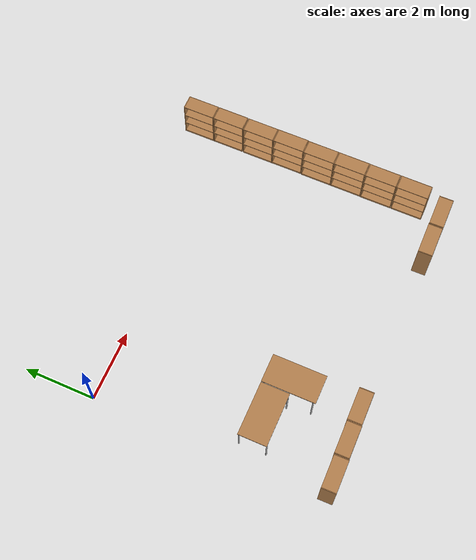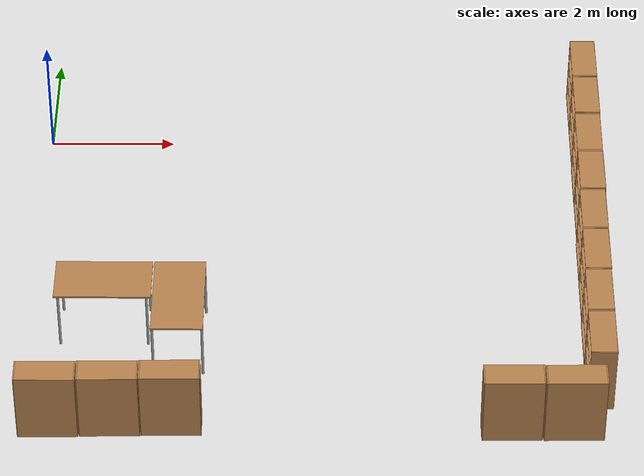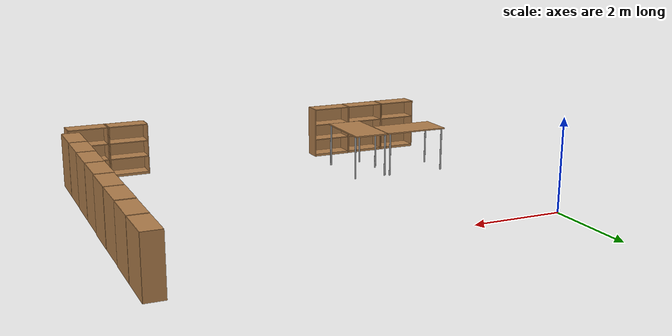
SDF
<sdf version="1.7">
 <world name="default">
  <model name="table">
   <static>1</static>
   <link name="link">
    <collision name="surface">
     <pose>0 0 1 0 -0 0</pose>
     <geometry><box><size>1.5 0.8 0.03</size></box></geometry>
     <surface><friction><ode><mu>0.6</mu><mu2>0.6</mu2></ode></friction></surface>
    </collision>
    <visual name="visual1">
     <pose>0 0 1 0 -0 0</pose>
     <geometry><box><size>1.5 0.8 0.03</size></box></geometry>
     <material>
      <script><uri>file://media/materials/scripts/gazebo.material</uri><name>Gazebo/Wood</name></script>
     </material>
    </visual>
    <collision name="front_left_leg">
     <pose>0.68 0.38 0.5 0 -0 0</pose>
     <geometry><cylinder><radius>0.02</radius><length>1</length></cylinder></geometry>
    </collision>
    <visual name="front_left_leg">
     <pose>0.68 0.38 0.5 0 -0 0</pose>
     <geometry><cylinder><radius>0.02</radius><length>1</length></cylinder></geometry>
     <material>
      <script><uri>file://media/materials/scripts/gazebo.material</uri><name>Gazebo/Grey</name></script>
     </material>
    </visual>
    <collision name="front_right_leg">
     <pose>0.68 -0.38 0.5 0 -0 0</pose>
     <geometry><cylinder><radius>0.02</radius><length>1</length></cylinder></geometry>
    </collision>
    <visual name="front_right_leg">
     <pose>0.68 -0.38 0.5 0 -0 0</pose>
     <geometry><cylinder><radius>0.02</radius><length>1</length></cylinder></geometry>
     <material>
      <script><uri>file://media/materials/scripts/gazebo.material</uri><name>Gazebo/Grey</name></script>
     </material>
    </visual>
    <collision name="back_right_leg">
     <pose>-0.68 -0.38 0.5 0 -0 0</pose>
     <geometry><cylinder><radius>0.02</radius><length>1</length></cylinder></geometry>
    </collision>
    <visual name="back_right_leg">
     <pose>-0.68 -0.38 0.5 0 -0 0</pose>
     <geometry><cylinder><radius>0.02</radius><length>1</length></cylinder></geometry>
     <material>
      <script><uri>file://media/materials/scripts/gazebo.material</uri><name>Gazebo/Grey</name></script>
     </material>
    </visual>
    <collision name="back_left_leg">
     <pose>-0.68 0.38 0.5 0 -0 0</pose>
     <geometry><cylinder><radius>0.02</radius><length>1</length></cylinder></geometry>
    </collision>
    <visual name="back_left_leg">
     <pose>-0.68 0.38 0.5 0 -0 0</pose>
     <geometry><cylinder><radius>0.02</radius><length>1</length></cylinder></geometry>
     <material>
      <script><uri>file://media/materials/scripts/gazebo.material</uri><name>Gazebo/Grey</name></script>
     </material>
    </visual>
   </link>
   <pose>1.12795 -4.37949 0 0 -0 0</pose>
  </model>
  <model name="bookshelf_clone_clone_15_clone_clone_6">
   <static>1</static>
   <link name="link">
    <inertial><mass>1</mass></inertial>
    <collision name="back">
     <pose>0 0.005 0.6 0 -0 0</pose>
     <geometry><box><size>0.9 0.01 1.2</size></box></geometry>
    </collision>
    <visual name="visual1">
     <pose>0 0.005 0.6 0 -0 0</pose>
     <geometry><box><size>0.9 0.01 1.2</size></box></geometry>
     <material>
      <script><uri>file://media/materials/scripts/gazebo.material</uri><name>Gazebo/Wood</name></script>
     </material>
    </visual>
    <collision name="left_side">
     <pose>0.45 -0.195 0.6 0 -0 0</pose>
     <geometry><box><size>0.02 0.4 1.2</size></box></geometry>
    </collision>
    <visual name="visual2">
     <pose>0.45 -0.195 0.6 0 -0 0</pose>
     <geometry><box><size>0.02 0.4 1.2</size></box></geometry>
     <material>
      <script><uri>file://media/materials/scripts/gazebo.material</uri><name>Gazebo/Wood</name></script>
     </material>
    </visual>
    <collision name="right_side">
     <pose>-0.45 -0.195 0.6 0 -0 0</pose>
     <geometry><box><size>0.02 0.4 1.2</size></box></geometry>
    </collision>
    <visual name="visual3">
     <pose>-0.45 -0.195 0.6 0 -0 0</pose>
     <geometry><box><size>0.02 0.4 1.2</size></box></geometry>
     <material>
      <script><uri>file://media/materials/scripts/gazebo.material</uri><name>Gazebo/Wood</name></script>
     </material>
    </visual>
    <collision name="bottom">
     <pose>0 -0.195 0.03 0 -0 0</pose>
     <geometry><box><size>0.88 0.4 0.06</size></box></geometry>
    </collision>
    <visual name="visual4">
     <pose>0 -0.195 0.03 0 -0 0</pose>
     <geometry><box><size>0.88 0.4 0.06</size></box></geometry>
     <material>
      <script><uri>file://media/materials/scripts/gazebo.material</uri><name>Gazebo/Wood</name></script>
     </material>
    </visual>
    <collision name="top">
     <pose>0 -0.195 1.19 0 -0 0</pose>
     <geometry><box><size>0.88 0.4 0.02</size></box></geometry>
    </collision>
    <visual name="visual5">
     <pose>0 -0.195 1.19 0 -0 0</pose>
     <geometry><box><size>0.88 0.4 0.02</size></box></geometry>
     <material>
      <script><uri>file://media/materials/scripts/gazebo.material</uri><name>Gazebo/Wood</name></script>
     </material>
    </visual>
    <collision name="low_shelf">
     <pose>0 -0.195 0.43 0 -0 0</pose>
     <geometry><box><size>0.88 0.4 0.02</size></box></geometry>
    </collision>
    <visual name="visual6">
     <pose>0 -0.195 0.43 0 -0 0</pose>
     <geometry><box><size>0.88 0.4 0.02</size></box></geometry>
     <material>
      <script><uri>file://media/materials/scripts/gazebo.material</uri><name>Gazebo/Wood</name></script>
     </material>
    </visual>
    <collision name="high_shelf">
     <pose>0 -0.195 0.8 0 -0 0</pose>
     <geometry><box><size>0.88 0.4 0.02</size></box></geometry>
    </collision>
    <visual name="visual7">
     <pose>0 -0.195 0.8 0 -0 0</pose>
     <geometry><box><size>0.88 0.4 0.02</size></box></geometry>
     <material>
      <script><uri>file://media/materials/scripts/gazebo.material</uri><name>Gazebo/Wood</name></script>
     </material>
    </visual>
   </link>
   <pose>8.96757 0.848002 0 0 0 -1.57173</pose>
  </model>
  <model name="bookshelf_clone_clone_15_clone_clone_7">
   <static>1</static>
   <link name="link">
    <inertial><mass>1</mass></inertial>
    <collision name="back">
     <pose>0 0.005 0.6 0 -0 0</pose>
     <geometry><box><size>0.9 0.01 1.2</size></box></geometry>
    </collision>
    <visual name="visual1">
     <pose>0 0.005 0.6 0 -0 0</pose>
     <geometry><box><size>0.9 0.01 1.2</size></box></geometry>
     <material>
      <script><uri>file://media/materials/scripts/gazebo.material</uri><name>Gazebo/Wood</name></script>
     </material>
    </visual>
    <collision name="left_side">
     <pose>0.45 -0.195 0.6 0 -0 0</pose>
     <geometry><box><size>0.02 0.4 1.2</size></box></geometry>
    </collision>
    <visual name="visual2">
     <pose>0.45 -0.195 0.6 0 -0 0</pose>
     <geometry><box><size>0.02 0.4 1.2</size></box></geometry>
     <material>
      <script><uri>file://media/materials/scripts/gazebo.material</uri><name>Gazebo/Wood</name></script>
     </material>
    </visual>
    <collision name="right_side">
     <pose>-0.45 -0.195 0.6 0 -0 0</pose>
     <geometry><box><size>0.02 0.4 1.2</size></box></geometry>
    </collision>
    <visual name="visual3">
     <pose>-0.45 -0.195 0.6 0 -0 0</pose>
     <geometry><box><size>0.02 0.4 1.2</size></box></geometry>
     <material>
      <script><uri>file://media/materials/scripts/gazebo.material</uri><name>Gazebo/Wood</name></script>
     </material>
    </visual>
    <collision name="bottom">
     <pose>0 -0.195 0.03 0 -0 0</pose>
     <geometry><box><size>0.88 0.4 0.06</size></box></geometry>
    </collision>
    <visual name="visual4">
     <pose>0 -0.195 0.03 0 -0 0</pose>
     <geometry><box><size>0.88 0.4 0.06</size></box></geometry>
     <material>
      <script><uri>file://media/materials/scripts/gazebo.material</uri><name>Gazebo/Wood</name></script>
     </material>
    </visual>
    <collision name="top">
     <pose>0 -0.195 1.19 0 -0 0</pose>
     <geometry><box><size>0.88 0.4 0.02</size></box></geometry>
    </collision>
    <visual name="visual5">
     <pose>0 -0.195 1.19 0 -0 0</pose>
     <geometry><box><size>0.88 0.4 0.02</size></box></geometry>
     <material>
      <script><uri>file://media/materials/scripts/gazebo.material</uri><name>Gazebo/Wood</name></script>
     </material>
    </visual>
    <collision name="low_shelf">
     <pose>0 -0.195 0.43 0 -0 0</pose>
     <geometry><box><size>0.88 0.4 0.02</size></box></geometry>
    </collision>
    <visual name="visual6">
     <pose>0 -0.195 0.43 0 -0 0</pose>
     <geometry><box><size>0.88 0.4 0.02</size></box></geometry>
     <material>
      <script><uri>file://media/materials/scripts/gazebo.material</uri><name>Gazebo/Wood</name></script>
     </material>
    </visual>
    <collision name="high_shelf">
     <pose>0 -0.195 0.8 0 -0 0</pose>
     <geometry><box><size>0.88 0.4 0.02</size></box></geometry>
    </collision>
    <visual name="visual7">
     <pose>0 -0.195 0.8 0 -0 0</pose>
     <geometry><box><size>0.88 0.4 0.02</size></box></geometry>
     <material>
      <script><uri>file://media/materials/scripts/gazebo.material</uri><name>Gazebo/Wood</name></script>
     </material>
    </visual>
   </link>
   <pose>8.96604 -0.080048 0 0 0 -1.57173</pose>
  </model>
  <model name="bookshelf_clone_clone_15_clone_clone_8">
   <static>1</static>
   <link name="link">
    <inertial><mass>1</mass></inertial>
    <collision name="back">
     <pose>0 0.005 0.6 0 -0 0</pose>
     <geometry><box><size>0.9 0.01 1.2</size></box></geometry>
    </collision>
    <visual name="visual1">
     <pose>0 0.005 0.6 0 -0 0</pose>
     <geometry><box><size>0.9 0.01 1.2</size></box></geometry>
     <material>
      <script><uri>file://media/materials/scripts/gazebo.material</uri><name>Gazebo/Wood</name></script>
     </material>
    </visual>
    <collision name="left_side">
     <pose>0.45 -0.195 0.6 0 -0 0</pose>
     <geometry><box><size>0.02 0.4 1.2</size></box></geometry>
    </collision>
    <visual name="visual2">
     <pose>0.45 -0.195 0.6 0 -0 0</pose>
     <geometry><box><size>0.02 0.4 1.2</size></box></geometry>
     <material>
      <script><uri>file://media/materials/scripts/gazebo.material</uri><name>Gazebo/Wood</name></script>
     </material>
    </visual>
    <collision name="right_side">
     <pose>-0.45 -0.195 0.6 0 -0 0</pose>
     <geometry><box><size>0.02 0.4 1.2</size></box></geometry>
    </collision>
    <visual name="visual3">
     <pose>-0.45 -0.195 0.6 0 -0 0</pose>
     <geometry><box><size>0.02 0.4 1.2</size></box></geometry>
     <material>
      <script><uri>file://media/materials/scripts/gazebo.material</uri><name>Gazebo/Wood</name></script>
     </material>
    </visual>
    <collision name="bottom">
     <pose>0 -0.195 0.03 0 -0 0</pose>
     <geometry><box><size>0.88 0.4 0.06</size></box></geometry>
    </collision>
    <visual name="visual4">
     <pose>0 -0.195 0.03 0 -0 0</pose>
     <geometry><box><size>0.88 0.4 0.06</size></box></geometry>
     <material>
      <script><uri>file://media/materials/scripts/gazebo.material</uri><name>Gazebo/Wood</name></script>
     </material>
    </visual>
    <collision name="top">
     <pose>0 -0.195 1.19 0 -0 0</pose>
     <geometry><box><size>0.88 0.4 0.02</size></box></geometry>
    </collision>
    <visual name="visual5">
     <pose>0 -0.195 1.19 0 -0 0</pose>
     <geometry><box><size>0.88 0.4 0.02</size></box></geometry>
     <material>
      <script><uri>file://media/materials/scripts/gazebo.material</uri><name>Gazebo/Wood</name></script>
     </material>
    </visual>
    <collision name="low_shelf">
     <pose>0 -0.195 0.43 0 -0 0</pose>
     <geometry><box><size>0.88 0.4 0.02</size></box></geometry>
    </collision>
    <visual name="visual6">
     <pose>0 -0.195 0.43 0 -0 0</pose>
     <geometry><box><size>0.88 0.4 0.02</size></box></geometry>
     <material>
      <script><uri>file://media/materials/scripts/gazebo.material</uri><name>Gazebo/Wood</name></script>
     </material>
    </visual>
    <collision name="high_shelf">
     <pose>0 -0.195 0.8 0 -0 0</pose>
     <geometry><box><size>0.88 0.4 0.02</size></box></geometry>
    </collision>
    <visual name="visual7">
     <pose>0 -0.195 0.8 0 -0 0</pose>
     <geometry><box><size>0.88 0.4 0.02</size></box></geometry>
     <material>
      <script><uri>file://media/materials/scripts/gazebo.material</uri><name>Gazebo/Wood</name></script>
     </material>
    </visual>
   </link>
   <pose>8.95812 -1.01816 0 0 0 -1.57173</pose>
  </model>
  <model name="bookshelf_clone_clone_15_clone_clone_9">
   <static>1</static>
   <link name="link">
    <inertial><mass>1</mass></inertial>
    <collision name="back">
     <pose>0 0.005 0.6 0 -0 0</pose>
     <geometry><box><size>0.9 0.01 1.2</size></box></geometry>
    </collision>
    <visual name="visual1">
     <pose>0 0.005 0.6 0 -0 0</pose>
     <geometry><box><size>0.9 0.01 1.2</size></box></geometry>
     <material>
      <script><uri>file://media/materials/scripts/gazebo.material</uri><name>Gazebo/Wood</name></script>
     </material>
    </visual>
    <collision name="left_side">
     <pose>0.45 -0.195 0.6 0 -0 0</pose>
     <geometry><box><size>0.02 0.4 1.2</size></box></geometry>
    </collision>
    <visual name="visual2">
     <pose>0.45 -0.195 0.6 0 -0 0</pose>
     <geometry><box><size>0.02 0.4 1.2</size></box></geometry>
     <material>
      <script><uri>file://media/materials/scripts/gazebo.material</uri><name>Gazebo/Wood</name></script>
     </material>
    </visual>
    <collision name="right_side">
     <pose>-0.45 -0.195 0.6 0 -0 0</pose>
     <geometry><box><size>0.02 0.4 1.2</size></box></geometry>
    </collision>
    <visual name="visual3">
     <pose>-0.45 -0.195 0.6 0 -0 0</pose>
     <geometry><box><size>0.02 0.4 1.2</size></box></geometry>
     <material>
      <script><uri>file://media/materials/scripts/gazebo.material</uri><name>Gazebo/Wood</name></script>
     </material>
    </visual>
    <collision name="bottom">
     <pose>0 -0.195 0.03 0 -0 0</pose>
     <geometry><box><size>0.88 0.4 0.06</size></box></geometry>
    </collision>
    <visual name="visual4">
     <pose>0 -0.195 0.03 0 -0 0</pose>
     <geometry><box><size>0.88 0.4 0.06</size></box></geometry>
     <material>
      <script><uri>file://media/materials/scripts/gazebo.material</uri><name>Gazebo/Wood</name></script>
     </material>
    </visual>
    <collision name="top">
     <pose>0 -0.195 1.19 0 -0 0</pose>
     <geometry><box><size>0.88 0.4 0.02</size></box></geometry>
    </collision>
    <visual name="visual5">
     <pose>0 -0.195 1.19 0 -0 0</pose>
     <geometry><box><size>0.88 0.4 0.02</size></box></geometry>
     <material>
      <script><uri>file://media/materials/scripts/gazebo.material</uri><name>Gazebo/Wood</name></script>
     </material>
    </visual>
    <collision name="low_shelf">
     <pose>0 -0.195 0.43 0 -0 0</pose>
     <geometry><box><size>0.88 0.4 0.02</size></box></geometry>
    </collision>
    <visual name="visual6">
     <pose>0 -0.195 0.43 0 -0 0</pose>
     <geometry><box><size>0.88 0.4 0.02</size></box></geometry>
     <material>
      <script><uri>file://media/materials/scripts/gazebo.material</uri><name>Gazebo/Wood</name></script>
     </material>
    </visual>
    <collision name="high_shelf">
     <pose>0 -0.195 0.8 0 -0 0</pose>
     <geometry><box><size>0.88 0.4 0.02</size></box></geometry>
    </collision>
    <visual name="visual7">
     <pose>0 -0.195 0.8 0 -0 0</pose>
     <geometry><box><size>0.88 0.4 0.02</size></box></geometry>
     <material>
      <script><uri>file://media/materials/scripts/gazebo.material</uri><name>Gazebo/Wood</name></script>
     </material>
    </visual>
   </link>
   <pose>8.95974 -1.94398 0 0 0 -1.57173</pose>
  </model>
  <model name="bookshelf_clone_clone_15_clone_clone_10">
   <static>1</static>
   <link name="link">
    <inertial><mass>1</mass></inertial>
    <collision name="back">
     <pose>0 0.005 0.6 0 -0 0</pose>
     <geometry><box><size>0.9 0.01 1.2</size></box></geometry>
    </collision>
    <visual name="visual1">
     <pose>0 0.005 0.6 0 -0 0</pose>
     <geometry><box><size>0.9 0.01 1.2</size></box></geometry>
     <material>
      <script><uri>file://media/materials/scripts/gazebo.material</uri><name>Gazebo/Wood</name></script>
     </material>
    </visual>
    <collision name="left_side">
     <pose>0.45 -0.195 0.6 0 -0 0</pose>
     <geometry><box><size>0.02 0.4 1.2</size></box></geometry>
    </collision>
    <visual name="visual2">
     <pose>0.45 -0.195 0.6 0 -0 0</pose>
     <geometry><box><size>0.02 0.4 1.2</size></box></geometry>
     <material>
      <script><uri>file://media/materials/scripts/gazebo.material</uri><name>Gazebo/Wood</name></script>
     </material>
    </visual>
    <collision name="right_side">
     <pose>-0.45 -0.195 0.6 0 -0 0</pose>
     <geometry><box><size>0.02 0.4 1.2</size></box></geometry>
    </collision>
    <visual name="visual3">
     <pose>-0.45 -0.195 0.6 0 -0 0</pose>
     <geometry><box><size>0.02 0.4 1.2</size></box></geometry>
     <material>
      <script><uri>file://media/materials/scripts/gazebo.material</uri><name>Gazebo/Wood</name></script>
     </material>
    </visual>
    <collision name="bottom">
     <pose>0 -0.195 0.03 0 -0 0</pose>
     <geometry><box><size>0.88 0.4 0.06</size></box></geometry>
    </collision>
    <visual name="visual4">
     <pose>0 -0.195 0.03 0 -0 0</pose>
     <geometry><box><size>0.88 0.4 0.06</size></box></geometry>
     <material>
      <script><uri>file://media/materials/scripts/gazebo.material</uri><name>Gazebo/Wood</name></script>
     </material>
    </visual>
    <collision name="top">
     <pose>0 -0.195 1.19 0 -0 0</pose>
     <geometry><box><size>0.88 0.4 0.02</size></box></geometry>
    </collision>
    <visual name="visual5">
     <pose>0 -0.195 1.19 0 -0 0</pose>
     <geometry><box><size>0.88 0.4 0.02</size></box></geometry>
     <material>
      <script><uri>file://media/materials/scripts/gazebo.material</uri><name>Gazebo/Wood</name></script>
     </material>
    </visual>
    <collision name="low_shelf">
     <pose>0 -0.195 0.43 0 -0 0</pose>
     <geometry><box><size>0.88 0.4 0.02</size></box></geometry>
    </collision>
    <visual name="visual6">
     <pose>0 -0.195 0.43 0 -0 0</pose>
     <geometry><box><size>0.88 0.4 0.02</size></box></geometry>
     <material>
      <script><uri>file://media/materials/scripts/gazebo.material</uri><name>Gazebo/Wood</name></script>
     </material>
    </visual>
    <collision name="high_shelf">
     <pose>0 -0.195 0.8 0 -0 0</pose>
     <geometry><box><size>0.88 0.4 0.02</size></box></geometry>
    </collision>
    <visual name="visual7">
     <pose>0 -0.195 0.8 0 -0 0</pose>
     <geometry><box><size>0.88 0.4 0.02</size></box></geometry>
     <material>
      <script><uri>file://media/materials/scripts/gazebo.material</uri><name>Gazebo/Wood</name></script>
     </material>
    </visual>
   </link>
   <pose>8.94594 -2.87331 0 0 0 -1.57173</pose>
  </model>
  <model name="bookshelf_clone_clone_15_clone_clone_11">
   <static>1</static>
   <link name="link">
    <inertial><mass>1</mass></inertial>
    <collision name="back">
     <pose>0 0.005 0.6 0 -0 0</pose>
     <geometry><box><size>0.9 0.01 1.2</size></box></geometry>
    </collision>
    <visual name="visual1">
     <pose>0 0.005 0.6 0 -0 0</pose>
     <geometry><box><size>0.9 0.01 1.2</size></box></geometry>
     <material>
      <script><uri>file://media/materials/scripts/gazebo.material</uri><name>Gazebo/Wood</name></script>
     </material>
    </visual>
    <collision name="left_side">
     <pose>0.45 -0.195 0.6 0 -0 0</pose>
     <geometry><box><size>0.02 0.4 1.2</size></box></geometry>
    </collision>
    <visual name="visual2">
     <pose>0.45 -0.195 0.6 0 -0 0</pose>
     <geometry><box><size>0.02 0.4 1.2</size></box></geometry>
     <material>
      <script><uri>file://media/materials/scripts/gazebo.material</uri><name>Gazebo/Wood</name></script>
     </material>
    </visual>
    <collision name="right_side">
     <pose>-0.45 -0.195 0.6 0 -0 0</pose>
     <geometry><box><size>0.02 0.4 1.2</size></box></geometry>
    </collision>
    <visual name="visual3">
     <pose>-0.45 -0.195 0.6 0 -0 0</pose>
     <geometry><box><size>0.02 0.4 1.2</size></box></geometry>
     <material>
      <script><uri>file://media/materials/scripts/gazebo.material</uri><name>Gazebo/Wood</name></script>
     </material>
    </visual>
    <collision name="bottom">
     <pose>0 -0.195 0.03 0 -0 0</pose>
     <geometry><box><size>0.88 0.4 0.06</size></box></geometry>
    </collision>
    <visual name="visual4">
     <pose>0 -0.195 0.03 0 -0 0</pose>
     <geometry><box><size>0.88 0.4 0.06</size></box></geometry>
     <material>
      <script><uri>file://media/materials/scripts/gazebo.material</uri><name>Gazebo/Wood</name></script>
     </material>
    </visual>
    <collision name="top">
     <pose>0 -0.195 1.19 0 -0 0</pose>
     <geometry><box><size>0.88 0.4 0.02</size></box></geometry>
    </collision>
    <visual name="visual5">
     <pose>0 -0.195 1.19 0 -0 0</pose>
     <geometry><box><size>0.88 0.4 0.02</size></box></geometry>
     <material>
      <script><uri>file://media/materials/scripts/gazebo.material</uri><name>Gazebo/Wood</name></script>
     </material>
    </visual>
    <collision name="low_shelf">
     <pose>0 -0.195 0.43 0 -0 0</pose>
     <geometry><box><size>0.88 0.4 0.02</size></box></geometry>
    </collision>
    <visual name="visual6">
     <pose>0 -0.195 0.43 0 -0 0</pose>
     <geometry><box><size>0.88 0.4 0.02</size></box></geometry>
     <material>
      <script><uri>file://media/materials/scripts/gazebo.material</uri><name>Gazebo/Wood</name></script>
     </material>
    </visual>
    <collision name="high_shelf">
     <pose>0 -0.195 0.8 0 -0 0</pose>
     <geometry><box><size>0.88 0.4 0.02</size></box></geometry>
    </collision>
    <visual name="visual7">
     <pose>0 -0.195 0.8 0 -0 0</pose>
     <geometry><box><size>0.88 0.4 0.02</size></box></geometry>
     <material>
      <script><uri>file://media/materials/scripts/gazebo.material</uri><name>Gazebo/Wood</name></script>
     </material>
    </visual>
   </link>
   <pose>8.94341 -3.79954 0 0 0 -1.57173</pose>
  </model>
  <model name="bookshelf_clone_clone_15_clone_clone_12">
   <static>1</static>
   <link name="link">
    <inertial><mass>1</mass></inertial>
    <collision name="back">
     <pose>0 0.005 0.6 0 -0 0</pose>
     <geometry><box><size>0.9 0.01 1.2</size></box></geometry>
    </collision>
    <visual name="visual1">
     <pose>0 0.005 0.6 0 -0 0</pose>
     <geometry><box><size>0.9 0.01 1.2</size></box></geometry>
     <material>
      <script><uri>file://media/materials/scripts/gazebo.material</uri><name>Gazebo/Wood</name></script>
     </material>
    </visual>
    <collision name="left_side">
     <pose>0.45 -0.195 0.6 0 -0 0</pose>
     <geometry><box><size>0.02 0.4 1.2</size></box></geometry>
    </collision>
    <visual name="visual2">
     <pose>0.45 -0.195 0.6 0 -0 0</pose>
     <geometry><box><size>0.02 0.4 1.2</size></box></geometry>
     <material>
      <script><uri>file://media/materials/scripts/gazebo.material</uri><name>Gazebo/Wood</name></script>
     </material>
    </visual>
    <collision name="right_side">
     <pose>-0.45 -0.195 0.6 0 -0 0</pose>
     <geometry><box><size>0.02 0.4 1.2</size></box></geometry>
    </collision>
    <visual name="visual3">
     <pose>-0.45 -0.195 0.6 0 -0 0</pose>
     <geometry><box><size>0.02 0.4 1.2</size></box></geometry>
     <material>
      <script><uri>file://media/materials/scripts/gazebo.material</uri><name>Gazebo/Wood</name></script>
     </material>
    </visual>
    <collision name="bottom">
     <pose>0 -0.195 0.03 0 -0 0</pose>
     <geometry><box><size>0.88 0.4 0.06</size></box></geometry>
    </collision>
    <visual name="visual4">
     <pose>0 -0.195 0.03 0 -0 0</pose>
     <geometry><box><size>0.88 0.4 0.06</size></box></geometry>
     <material>
      <script><uri>file://media/materials/scripts/gazebo.material</uri><name>Gazebo/Wood</name></script>
     </material>
    </visual>
    <collision name="top">
     <pose>0 -0.195 1.19 0 -0 0</pose>
     <geometry><box><size>0.88 0.4 0.02</size></box></geometry>
    </collision>
    <visual name="visual5">
     <pose>0 -0.195 1.19 0 -0 0</pose>
     <geometry><box><size>0.88 0.4 0.02</size></box></geometry>
     <material>
      <script><uri>file://media/materials/scripts/gazebo.material</uri><name>Gazebo/Wood</name></script>
     </material>
    </visual>
    <collision name="low_shelf">
     <pose>0 -0.195 0.43 0 -0 0</pose>
     <geometry><box><size>0.88 0.4 0.02</size></box></geometry>
    </collision>
    <visual name="visual6">
     <pose>0 -0.195 0.43 0 -0 0</pose>
     <geometry><box><size>0.88 0.4 0.02</size></box></geometry>
     <material>
      <script><uri>file://media/materials/scripts/gazebo.material</uri><name>Gazebo/Wood</name></script>
     </material>
    </visual>
    <collision name="high_shelf">
     <pose>0 -0.195 0.8 0 -0 0</pose>
     <geometry><box><size>0.88 0.4 0.02</size></box></geometry>
    </collision>
    <visual name="visual7">
     <pose>0 -0.195 0.8 0 -0 0</pose>
     <geometry><box><size>0.88 0.4 0.02</size></box></geometry>
     <material>
      <script><uri>file://media/materials/scripts/gazebo.material</uri><name>Gazebo/Wood</name></script>
     </material>
    </visual>
   </link>
   <pose>8.93535 -4.72873 0 0 0 -1.57173</pose>
  </model>
  <model name="bookshelf_clone_clone_15_clone_clone_13">
   <static>1</static>
   <link name="link">
    <inertial><mass>1</mass></inertial>
    <collision name="back">
     <pose>0 0.005 0.6 0 -0 0</pose>
     <geometry><box><size>0.9 0.01 1.2</size></box></geometry>
    </collision>
    <visual name="visual1">
     <pose>0 0.005 0.6 0 -0 0</pose>
     <geometry><box><size>0.9 0.01 1.2</size></box></geometry>
     <material>
      <script><uri>file://media/materials/scripts/gazebo.material</uri><name>Gazebo/Wood</name></script>
     </material>
    </visual>
    <collision name="left_side">
     <pose>0.45 -0.195 0.6 0 -0 0</pose>
     <geometry><box><size>0.02 0.4 1.2</size></box></geometry>
    </collision>
    <visual name="visual2">
     <pose>0.45 -0.195 0.6 0 -0 0</pose>
     <geometry><box><size>0.02 0.4 1.2</size></box></geometry>
     <material>
      <script><uri>file://media/materials/scripts/gazebo.material</uri><name>Gazebo/Wood</name></script>
     </material>
    </visual>
    <collision name="right_side">
     <pose>-0.45 -0.195 0.6 0 -0 0</pose>
     <geometry><box><size>0.02 0.4 1.2</size></box></geometry>
    </collision>
    <visual name="visual3">
     <pose>-0.45 -0.195 0.6 0 -0 0</pose>
     <geometry><box><size>0.02 0.4 1.2</size></box></geometry>
     <material>
      <script><uri>file://media/materials/scripts/gazebo.material</uri><name>Gazebo/Wood</name></script>
     </material>
    </visual>
    <collision name="bottom">
     <pose>0 -0.195 0.03 0 -0 0</pose>
     <geometry><box><size>0.88 0.4 0.06</size></box></geometry>
    </collision>
    <visual name="visual4">
     <pose>0 -0.195 0.03 0 -0 0</pose>
     <geometry><box><size>0.88 0.4 0.06</size></box></geometry>
     <material>
      <script><uri>file://media/materials/scripts/gazebo.material</uri><name>Gazebo/Wood</name></script>
     </material>
    </visual>
    <collision name="top">
     <pose>0 -0.195 1.19 0 -0 0</pose>
     <geometry><box><size>0.88 0.4 0.02</size></box></geometry>
    </collision>
    <visual name="visual5">
     <pose>0 -0.195 1.19 0 -0 0</pose>
     <geometry><box><size>0.88 0.4 0.02</size></box></geometry>
     <material>
      <script><uri>file://media/materials/scripts/gazebo.material</uri><name>Gazebo/Wood</name></script>
     </material>
    </visual>
    <collision name="low_shelf">
     <pose>0 -0.195 0.43 0 -0 0</pose>
     <geometry><box><size>0.88 0.4 0.02</size></box></geometry>
    </collision>
    <visual name="visual6">
     <pose>0 -0.195 0.43 0 -0 0</pose>
     <geometry><box><size>0.88 0.4 0.02</size></box></geometry>
     <material>
      <script><uri>file://media/materials/scripts/gazebo.material</uri><name>Gazebo/Wood</name></script>
     </material>
    </visual>
    <collision name="high_shelf">
     <pose>0 -0.195 0.8 0 -0 0</pose>
     <geometry><box><size>0.88 0.4 0.02</size></box></geometry>
    </collision>
    <visual name="visual7">
     <pose>0 -0.195 0.8 0 -0 0</pose>
     <geometry><box><size>0.88 0.4 0.02</size></box></geometry>
     <material>
      <script><uri>file://media/materials/scripts/gazebo.material</uri><name>Gazebo/Wood</name></script>
     </material>
    </visual>
   </link>
   <pose>8.93371 -5.66028 0 0 0 -1.57173</pose>
  </model>
  <model name="bookshelf_clone_1_clone_clone">
   <static>1</static>
   <link name="link">
    <inertial><mass>1</mass></inertial>
    <collision name="back">
     <pose>0 0.005 0.6 0 -0 0</pose>
     <geometry><box><size>0.9 0.01 1.2</size></box></geometry>
    </collision>
    <visual name="visual1">
     <pose>0 0.005 0.6 0 -0 0</pose>
     <geometry><box><size>0.9 0.01 1.2</size></box></geometry>
     <material>
      <script><uri>file://media/materials/scripts/gazebo.material</uri><name>Gazebo/Wood</name></script>
     </material>
    </visual>
    <collision name="left_side">
     <pose>0.45 -0.195 0.6 0 -0 0</pose>
     <geometry><box><size>0.02 0.4 1.2</size></box></geometry>
    </collision>
    <visual name="visual2">
     <pose>0.45 -0.195 0.6 0 -0 0</pose>
     <geometry><box><size>0.02 0.4 1.2</size></box></geometry>
     <material>
      <script><uri>file://media/materials/scripts/gazebo.material</uri><name>Gazebo/Wood</name></script>
     </material>
    </visual>
    <collision name="right_side">
     <pose>-0.45 -0.195 0.6 0 -0 0</pose>
     <geometry><box><size>0.02 0.4 1.2</size></box></geometry>
    </collision>
    <visual name="visual3">
     <pose>-0.45 -0.195 0.6 0 -0 0</pose>
     <geometry><box><size>0.02 0.4 1.2</size></box></geometry>
     <material>
      <script><uri>file://media/materials/scripts/gazebo.material</uri><name>Gazebo/Wood</name></script>
     </material>
    </visual>
    <collision name="bottom">
     <pose>0 -0.195 0.03 0 -0 0</pose>
     <geometry><box><size>0.88 0.4 0.06</size></box></geometry>
    </collision>
    <visual name="visual4">
     <pose>0 -0.195 0.03 0 -0 0</pose>
     <geometry><box><size>0.88 0.4 0.06</size></box></geometry>
     <material>
      <script><uri>file://media/materials/scripts/gazebo.material</uri><name>Gazebo/Wood</name></script>
     </material>
    </visual>
    <collision name="top">
     <pose>0 -0.195 1.19 0 -0 0</pose>
     <geometry><box><size>0.88 0.4 0.02</size></box></geometry>
    </collision>
    <visual name="visual5">
     <pose>0 -0.195 1.19 0 -0 0</pose>
     <geometry><box><size>0.88 0.4 0.02</size></box></geometry>
     <material>
      <script><uri>file://media/materials/scripts/gazebo.material</uri><name>Gazebo/Wood</name></script>
     </material>
    </visual>
    <collision name="low_shelf">
     <pose>0 -0.195 0.43 0 -0 0</pose>
     <geometry><box><size>0.88 0.4 0.02</size></box></geometry>
    </collision>
    <visual name="visual6">
     <pose>0 -0.195 0.43 0 -0 0</pose>
     <geometry><box><size>0.88 0.4 0.02</size></box></geometry>
     <material>
      <script><uri>file://media/materials/scripts/gazebo.material</uri><name>Gazebo/Wood</name></script>
     </material>
    </visual>
    <collision name="high_shelf">
     <pose>0 -0.195 0.8 0 -0 0</pose>
     <geometry><box><size>0.88 0.4 0.02</size></box></geometry>
    </collision>
    <visual name="visual7">
     <pose>0 -0.195 0.8 0 -0 0</pose>
     <geometry><box><size>0.88 0.4 0.02</size></box></geometry>
     <material>
      <script><uri>file://media/materials/scripts/gazebo.material</uri><name>Gazebo/Wood</name></script>
     </material>
    </visual>
   </link>
   <pose>7.37675 -6.79092 0 0 0 -3.12822</pose>
  </model>
  <model name="bookshelf_clone_1_clone_clone_0">
   <static>1</static>
   <link name="link">
    <inertial><mass>1</mass></inertial>
    <collision name="back">
     <pose>0 0.005 0.6 0 -0 0</pose>
     <geometry><box><size>0.9 0.01 1.2</size></box></geometry>
    </collision>
    <visual name="visual1">
     <pose>0 0.005 0.6 0 -0 0</pose>
     <geometry><box><size>0.9 0.01 1.2</size></box></geometry>
     <material>
      <script><uri>file://media/materials/scripts/gazebo.material</uri><name>Gazebo/Wood</name></script>
     </material>
    </visual>
    <collision name="left_side">
     <pose>0.45 -0.195 0.6 0 -0 0</pose>
     <geometry><box><size>0.02 0.4 1.2</size></box></geometry>
    </collision>
    <visual name="visual2">
     <pose>0.45 -0.195 0.6 0 -0 0</pose>
     <geometry><box><size>0.02 0.4 1.2</size></box></geometry>
     <material>
      <script><uri>file://media/materials/scripts/gazebo.material</uri><name>Gazebo/Wood</name></script>
     </material>
    </visual>
    <collision name="right_side">
     <pose>-0.45 -0.195 0.6 0 -0 0</pose>
     <geometry><box><size>0.02 0.4 1.2</size></box></geometry>
    </collision>
    <visual name="visual3">
     <pose>-0.45 -0.195 0.6 0 -0 0</pose>
     <geometry><box><size>0.02 0.4 1.2</size></box></geometry>
     <material>
      <script><uri>file://media/materials/scripts/gazebo.material</uri><name>Gazebo/Wood</name></script>
     </material>
    </visual>
    <collision name="bottom">
     <pose>0 -0.195 0.03 0 -0 0</pose>
     <geometry><box><size>0.88 0.4 0.06</size></box></geometry>
    </collision>
    <visual name="visual4">
     <pose>0 -0.195 0.03 0 -0 0</pose>
     <geometry><box><size>0.88 0.4 0.06</size></box></geometry>
     <material>
      <script><uri>file://media/materials/scripts/gazebo.material</uri><name>Gazebo/Wood</name></script>
     </material>
    </visual>
    <collision name="top">
     <pose>0 -0.195 1.19 0 -0 0</pose>
     <geometry><box><size>0.88 0.4 0.02</size></box></geometry>
    </collision>
    <visual name="visual5">
     <pose>0 -0.195 1.19 0 -0 0</pose>
     <geometry><box><size>0.88 0.4 0.02</size></box></geometry>
     <material>
      <script><uri>file://media/materials/scripts/gazebo.material</uri><name>Gazebo/Wood</name></script>
     </material>
    </visual>
    <collision name="low_shelf">
     <pose>0 -0.195 0.43 0 -0 0</pose>
     <geometry><box><size>0.88 0.4 0.02</size></box></geometry>
    </collision>
    <visual name="visual6">
     <pose>0 -0.195 0.43 0 -0 0</pose>
     <geometry><box><size>0.88 0.4 0.02</size></box></geometry>
     <material>
      <script><uri>file://media/materials/scripts/gazebo.material</uri><name>Gazebo/Wood</name></script>
     </material>
    </visual>
    <collision name="high_shelf">
     <pose>0 -0.195 0.8 0 -0 0</pose>
     <geometry><box><size>0.88 0.4 0.02</size></box></geometry>
    </collision>
    <visual name="visual7">
     <pose>0 -0.195 0.8 0 -0 0</pose>
     <geometry><box><size>0.88 0.4 0.02</size></box></geometry>
     <material>
      <script><uri>file://media/materials/scripts/gazebo.material</uri><name>Gazebo/Wood</name></script>
     </material>
    </visual>
   </link>
   <pose>8.30859 -6.78478 0 0 0 -3.12822</pose>
  </model>
  <model name="bookshelf_clone_1_clone_clone_1">
   <static>1</static>
   <link name="link">
    <inertial><mass>1</mass></inertial>
    <collision name="back">
     <pose>0 0.005 0.6 0 -0 0</pose>
     <geometry><box><size>0.9 0.01 1.2</size></box></geometry>
    </collision>
    <visual name="visual1">
     <pose>0 0.005 0.6 0 -0 0</pose>
     <geometry><box><size>0.9 0.01 1.2</size></box></geometry>
     <material>
      <script><uri>file://media/materials/scripts/gazebo.material</uri><name>Gazebo/Wood</name></script>
     </material>
    </visual>
    <collision name="left_side">
     <pose>0.45 -0.195 0.6 0 -0 0</pose>
     <geometry><box><size>0.02 0.4 1.2</size></box></geometry>
    </collision>
    <visual name="visual2">
     <pose>0.45 -0.195 0.6 0 -0 0</pose>
     <geometry><box><size>0.02 0.4 1.2</size></box></geometry>
     <material>
      <script><uri>file://media/materials/scripts/gazebo.material</uri><name>Gazebo/Wood</name></script>
     </material>
    </visual>
    <collision name="right_side">
     <pose>-0.45 -0.195 0.6 0 -0 0</pose>
     <geometry><box><size>0.02 0.4 1.2</size></box></geometry>
    </collision>
    <visual name="visual3">
     <pose>-0.45 -0.195 0.6 0 -0 0</pose>
     <geometry><box><size>0.02 0.4 1.2</size></box></geometry>
     <material>
      <script><uri>file://media/materials/scripts/gazebo.material</uri><name>Gazebo/Wood</name></script>
     </material>
    </visual>
    <collision name="bottom">
     <pose>0 -0.195 0.03 0 -0 0</pose>
     <geometry><box><size>0.88 0.4 0.06</size></box></geometry>
    </collision>
    <visual name="visual4">
     <pose>0 -0.195 0.03 0 -0 0</pose>
     <geometry><box><size>0.88 0.4 0.06</size></box></geometry>
     <material>
      <script><uri>file://media/materials/scripts/gazebo.material</uri><name>Gazebo/Wood</name></script>
     </material>
    </visual>
    <collision name="top">
     <pose>0 -0.195 1.19 0 -0 0</pose>
     <geometry><box><size>0.88 0.4 0.02</size></box></geometry>
    </collision>
    <visual name="visual5">
     <pose>0 -0.195 1.19 0 -0 0</pose>
     <geometry><box><size>0.88 0.4 0.02</size></box></geometry>
     <material>
      <script><uri>file://media/materials/scripts/gazebo.material</uri><name>Gazebo/Wood</name></script>
     </material>
    </visual>
    <collision name="low_shelf">
     <pose>0 -0.195 0.43 0 -0 0</pose>
     <geometry><box><size>0.88 0.4 0.02</size></box></geometry>
    </collision>
    <visual name="visual6">
     <pose>0 -0.195 0.43 0 -0 0</pose>
     <geometry><box><size>0.88 0.4 0.02</size></box></geometry>
     <material>
      <script><uri>file://media/materials/scripts/gazebo.material</uri><name>Gazebo/Wood</name></script>
     </material>
    </visual>
    <collision name="high_shelf">
     <pose>0 -0.195 0.8 0 -0 0</pose>
     <geometry><box><size>0.88 0.4 0.02</size></box></geometry>
    </collision>
    <visual name="visual7">
     <pose>0 -0.195 0.8 0 -0 0</pose>
     <geometry><box><size>0.88 0.4 0.02</size></box></geometry>
     <material>
      <script><uri>file://media/materials/scripts/gazebo.material</uri><name>Gazebo/Wood</name></script>
     </material>
    </visual>
   </link>
   <pose>2.24259 -6.73284 0 0 0 -3.12822</pose>
  </model>
  <model name="bookshelf_clone_1_clone_clone_2">
   <static>1</static>
   <link name="link">
    <inertial><mass>1</mass></inertial>
    <collision name="back">
     <pose>0 0.005 0.6 0 -0 0</pose>
     <geometry><box><size>0.9 0.01 1.2</size></box></geometry>
    </collision>
    <visual name="visual1">
     <pose>0 0.005 0.6 0 -0 0</pose>
     <geometry><box><size>0.9 0.01 1.2</size></box></geometry>
     <material>
      <script><uri>file://media/materials/scripts/gazebo.material</uri><name>Gazebo/Wood</name></script>
     </material>
    </visual>
    <collision name="left_side">
     <pose>0.45 -0.195 0.6 0 -0 0</pose>
     <geometry><box><size>0.02 0.4 1.2</size></box></geometry>
    </collision>
    <visual name="visual2">
     <pose>0.45 -0.195 0.6 0 -0 0</pose>
     <geometry><box><size>0.02 0.4 1.2</size></box></geometry>
     <material>
      <script><uri>file://media/materials/scripts/gazebo.material</uri><name>Gazebo/Wood</name></script>
     </material>
    </visual>
    <collision name="right_side">
     <pose>-0.45 -0.195 0.6 0 -0 0</pose>
     <geometry><box><size>0.02 0.4 1.2</size></box></geometry>
    </collision>
    <visual name="visual3">
     <pose>-0.45 -0.195 0.6 0 -0 0</pose>
     <geometry><box><size>0.02 0.4 1.2</size></box></geometry>
     <material>
      <script><uri>file://media/materials/scripts/gazebo.material</uri><name>Gazebo/Wood</name></script>
     </material>
    </visual>
    <collision name="bottom">
     <pose>0 -0.195 0.03 0 -0 0</pose>
     <geometry><box><size>0.88 0.4 0.06</size></box></geometry>
    </collision>
    <visual name="visual4">
     <pose>0 -0.195 0.03 0 -0 0</pose>
     <geometry><box><size>0.88 0.4 0.06</size></box></geometry>
     <material>
      <script><uri>file://media/materials/scripts/gazebo.material</uri><name>Gazebo/Wood</name></script>
     </material>
    </visual>
    <collision name="top">
     <pose>0 -0.195 1.19 0 -0 0</pose>
     <geometry><box><size>0.88 0.4 0.02</size></box></geometry>
    </collision>
    <visual name="visual5">
     <pose>0 -0.195 1.19 0 -0 0</pose>
     <geometry><box><size>0.88 0.4 0.02</size></box></geometry>
     <material>
      <script><uri>file://media/materials/scripts/gazebo.material</uri><name>Gazebo/Wood</name></script>
     </material>
    </visual>
    <collision name="low_shelf">
     <pose>0 -0.195 0.43 0 -0 0</pose>
     <geometry><box><size>0.88 0.4 0.02</size></box></geometry>
    </collision>
    <visual name="visual6">
     <pose>0 -0.195 0.43 0 -0 0</pose>
     <geometry><box><size>0.88 0.4 0.02</size></box></geometry>
     <material>
      <script><uri>file://media/materials/scripts/gazebo.material</uri><name>Gazebo/Wood</name></script>
     </material>
    </visual>
    <collision name="high_shelf">
     <pose>0 -0.195 0.8 0 -0 0</pose>
     <geometry><box><size>0.88 0.4 0.02</size></box></geometry>
    </collision>
    <visual name="visual7">
     <pose>0 -0.195 0.8 0 -0 0</pose>
     <geometry><box><size>0.88 0.4 0.02</size></box></geometry>
     <material>
      <script><uri>file://media/materials/scripts/gazebo.material</uri><name>Gazebo/Wood</name></script>
     </material>
    </visual>
   </link>
   <pose>1.31702 -6.75409 0 0 0 -3.12822</pose>
  </model>
  <model name="bookshelf_clone_1_clone_clone_3">
   <static>1</static>
   <link name="link">
    <inertial><mass>1</mass></inertial>
    <collision name="back">
     <pose>0 0.005 0.6 0 -0 0</pose>
     <geometry><box><size>0.9 0.01 1.2</size></box></geometry>
    </collision>
    <visual name="visual1">
     <pose>0 0.005 0.6 0 -0 0</pose>
     <geometry><box><size>0.9 0.01 1.2</size></box></geometry>
     <material>
      <script><uri>file://media/materials/scripts/gazebo.material</uri><name>Gazebo/Wood</name></script>
     </material>
    </visual>
    <collision name="left_side">
     <pose>0.45 -0.195 0.6 0 -0 0</pose>
     <geometry><box><size>0.02 0.4 1.2</size></box></geometry>
    </collision>
    <visual name="visual2">
     <pose>0.45 -0.195 0.6 0 -0 0</pose>
     <geometry><box><size>0.02 0.4 1.2</size></box></geometry>
     <material>
      <script><uri>file://media/materials/scripts/gazebo.material</uri><name>Gazebo/Wood</name></script>
     </material>
    </visual>
    <collision name="right_side">
     <pose>-0.45 -0.195 0.6 0 -0 0</pose>
     <geometry><box><size>0.02 0.4 1.2</size></box></geometry>
    </collision>
    <visual name="visual3">
     <pose>-0.45 -0.195 0.6 0 -0 0</pose>
     <geometry><box><size>0.02 0.4 1.2</size></box></geometry>
     <material>
      <script><uri>file://media/materials/scripts/gazebo.material</uri><name>Gazebo/Wood</name></script>
     </material>
    </visual>
    <collision name="bottom">
     <pose>0 -0.195 0.03 0 -0 0</pose>
     <geometry><box><size>0.88 0.4 0.06</size></box></geometry>
    </collision>
    <visual name="visual4">
     <pose>0 -0.195 0.03 0 -0 0</pose>
     <geometry><box><size>0.88 0.4 0.06</size></box></geometry>
     <material>
      <script><uri>file://media/materials/scripts/gazebo.material</uri><name>Gazebo/Wood</name></script>
     </material>
    </visual>
    <collision name="top">
     <pose>0 -0.195 1.19 0 -0 0</pose>
     <geometry><box><size>0.88 0.4 0.02</size></box></geometry>
    </collision>
    <visual name="visual5">
     <pose>0 -0.195 1.19 0 -0 0</pose>
     <geometry><box><size>0.88 0.4 0.02</size></box></geometry>
     <material>
      <script><uri>file://media/materials/scripts/gazebo.material</uri><name>Gazebo/Wood</name></script>
     </material>
    </visual>
    <collision name="low_shelf">
     <pose>0 -0.195 0.43 0 -0 0</pose>
     <geometry><box><size>0.88 0.4 0.02</size></box></geometry>
    </collision>
    <visual name="visual6">
     <pose>0 -0.195 0.43 0 -0 0</pose>
     <geometry><box><size>0.88 0.4 0.02</size></box></geometry>
     <material>
      <script><uri>file://media/materials/scripts/gazebo.material</uri><name>Gazebo/Wood</name></script>
     </material>
    </visual>
    <collision name="high_shelf">
     <pose>0 -0.195 0.8 0 -0 0</pose>
     <geometry><box><size>0.88 0.4 0.02</size></box></geometry>
    </collision>
    <visual name="visual7">
     <pose>0 -0.195 0.8 0 -0 0</pose>
     <geometry><box><size>0.88 0.4 0.02</size></box></geometry>
     <material>
      <script><uri>file://media/materials/scripts/gazebo.material</uri><name>Gazebo/Wood</name></script>
     </material>
    </visual>
   </link>
   <pose>0.38586 -6.77565 0 0 0 -3.12822</pose>
  </model>
  <model name="table_clone">
   <static>1</static>
   <link name="link">
    <collision name="surface">
     <pose>0 0 1 0 -0 0</pose>
     <geometry><box><size>1.5 0.8 0.03</size></box></geometry>
     <surface><friction><ode><mu>0.6</mu><mu2>0.6</mu2></ode></friction></surface>
    </collision>
    <visual name="visual1">
     <pose>0 0 1 0 -0 0</pose>
     <geometry><box><size>1.5 0.8 0.03</size></box></geometry>
     <material>
      <script><uri>file://media/materials/scripts/gazebo.material</uri><name>Gazebo/Wood</name></script>
     </material>
    </visual>
    <collision name="front_left_leg">
     <pose>0.68 0.38 0.5 0 -0 0</pose>
     <geometry><cylinder><radius>0.02</radius><length>1</length></cylinder></geometry>
    </collision>
    <visual name="front_left_leg">
     <pose>0.68 0.38 0.5 0 -0 0</pose>
     <geometry><cylinder><radius>0.02</radius><length>1</length></cylinder></geometry>
     <material>
      <script><uri>file://media/materials/scripts/gazebo.material</uri><name>Gazebo/Grey</name></script>
     </material>
    </visual>
    <collision name="front_right_leg">
     <pose>0.68 -0.38 0.5 0 -0 0</pose>
     <geometry><cylinder><radius>0.02</radius><length>1</length></cylinder></geometry>
    </collision>
    <visual name="front_right_leg">
     <pose>0.68 -0.38 0.5 0 -0 0</pose>
     <geometry><cylinder><radius>0.02</radius><length>1</length></cylinder></geometry>
     <material>
      <script><uri>file://media/materials/scripts/gazebo.material</uri><name>Gazebo/Grey</name></script>
     </material>
    </visual>
    <collision name="back_right_leg">
     <pose>-0.68 -0.38 0.5 0 -0 0</pose>
     <geometry><cylinder><radius>0.02</radius><length>1</length></cylinder></geometry>
    </collision>
    <visual name="back_right_leg">
     <pose>-0.68 -0.38 0.5 0 -0 0</pose>
     <geometry><cylinder><radius>0.02</radius><length>1</length></cylinder></geometry>
     <material>
      <script><uri>file://media/materials/scripts/gazebo.material</uri><name>Gazebo/Grey</name></script>
     </material>
    </visual>
    <collision name="back_left_leg">
     <pose>-0.68 0.38 0.5 0 -0 0</pose>
     <geometry><cylinder><radius>0.02</radius><length>1</length></cylinder></geometry>
    </collision>
    <visual name="back_left_leg">
     <pose>-0.68 0.38 0.5 0 -0 0</pose>
     <geometry><cylinder><radius>0.02</radius><length>1</length></cylinder></geometry>
     <material>
      <script><uri>file://media/materials/scripts/gazebo.material</uri><name>Gazebo/Grey</name></script>
     </material>
    </visual>
   </link>
   <pose>2.29903 -4.72458 0 0 0 -1.57113</pose>
  </model>
 </world>
</sdf>
